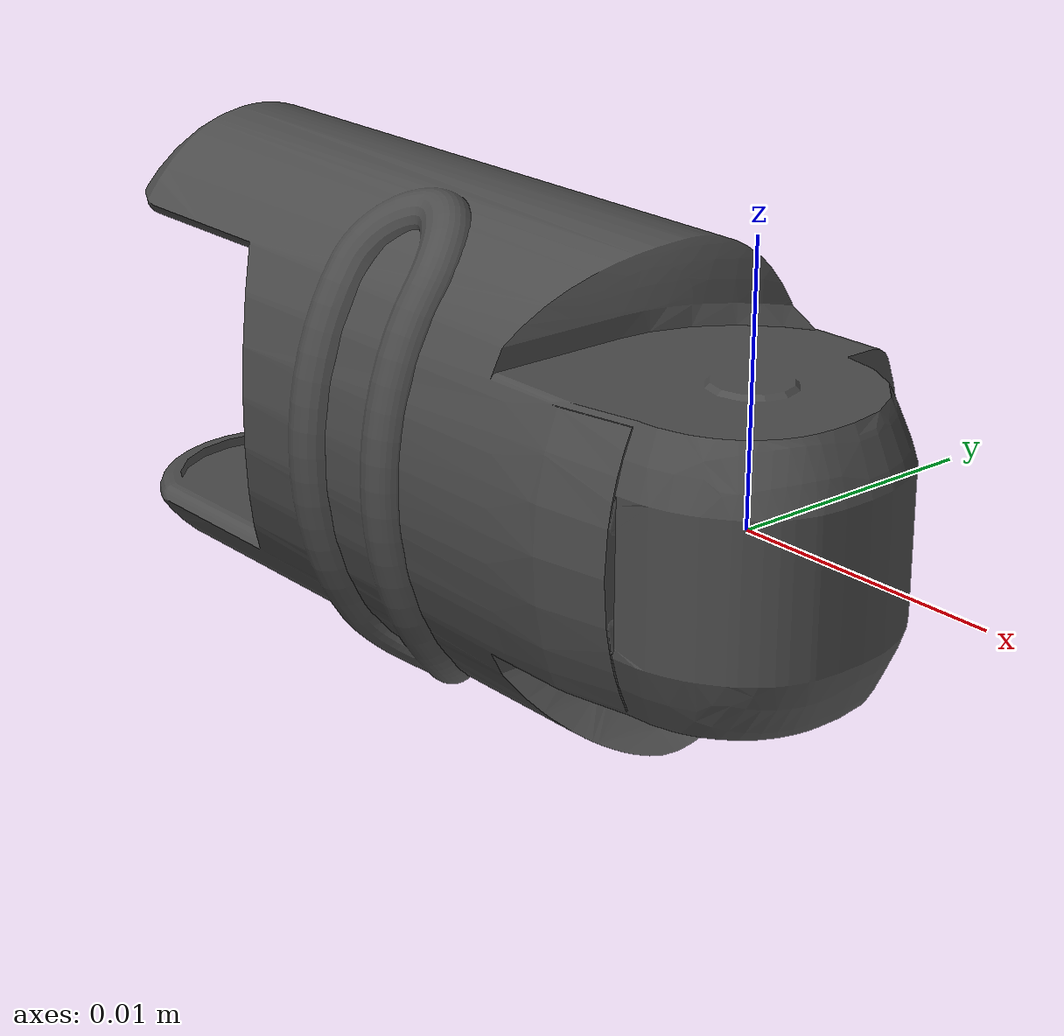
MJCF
<mujoco model="phalanx_link">
  <default>
    <default class="visual">
      <geom group="2" type="mesh" contype="0" conaffinity="0"/>
    </default>
    <default class="collision">
      <geom group="3" type="mesh"/>
    </default>
  </default>
  <asset>
    <material name="mtl_phalanx_link" specular="0.20000000000000004" shininess="1.0" rgba="0.29803922 0.29803922 0.29803922 1.0"/>
    <mesh file="phalanx_link.obj"/>
  </asset>
  <worldbody>
    <body name="phalanx_link">
      <geom material="mtl_phalanx_link" mesh="phalanx_link" class="visual"/>
      <geom mesh="phalanx_link" class="collision"/>
    </body>
  </worldbody>
</mujoco>
